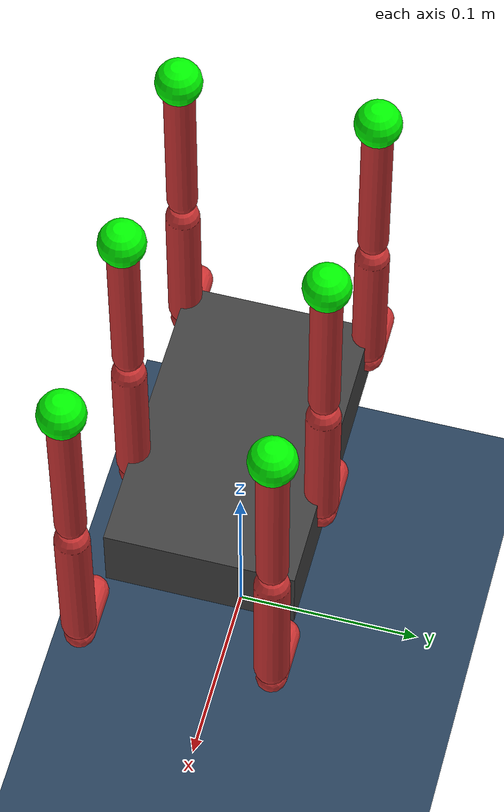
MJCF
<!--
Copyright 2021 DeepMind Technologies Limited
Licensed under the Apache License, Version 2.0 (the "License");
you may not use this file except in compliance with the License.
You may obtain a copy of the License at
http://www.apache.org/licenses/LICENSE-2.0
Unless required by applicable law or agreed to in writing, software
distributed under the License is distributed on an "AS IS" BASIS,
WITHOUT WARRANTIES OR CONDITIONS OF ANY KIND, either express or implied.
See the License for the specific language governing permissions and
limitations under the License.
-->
<mujoco model="hexapod">
    <compiler autolimits="true"/>

    <option timestep="0.002" gravity="0 0 -9.81" iterations="50" solver="Newton"/>

    <asset>
        <texture name="grid" type="2d" builtin="checker"
                 width="512" height="512"
                 rgb1=".1 .2 .3" rgb2=".2 .3 .4"/>
        <material name="grid" texture="grid"
                  texrepeat="1 1" texuniform="true" reflectance=".2"/>
        <material name="body_mat" rgba="0.25 0.25 0.25 1"/>
        <material name="leg_mat"  rgba="0.80 0.20 0.20 1"/>
        <material name="tip_mat"  rgba="0.10 0.80 0.10 1"/>
    </asset>

    <default>
        <joint damping="0.5" armature="0.004" frictionloss="0.01"/>

        <position kv="0.5" forcerange="-2.5 2.5"/>
    </default>

    <worldbody>
        <!-- Ground plane — high lateral friction for stable foot contact -->
        <geom type="plane" size="5 5 0.01" material="grid"
              friction="1.2 0.005 0.0001"/>

        <!-- Overhead tracking light -->
        <light name="sun" pos="0 0 2" mode="trackcom" diffuse="0.85 0.85 0.85"/>

        <body name="torso" pos="0 0 0.15">
            <freejoint/>
            <geom type="box" size="0.08 0.05 0.02"
                  material="body_mat" mass="1.0"/>
            <site name="imu_site" pos="0 0 0" size="0.01" rgba="1 0 0 1"/>

            <body name="leg0_base" pos="0.10 0.05 0">
                <joint name="leg0_coxa_j" type="hinge" axis="0 0 1" range="0 90"/>
                <!-- Coxa segment: 25 mm stub along local +X (toward femur joint) -->
                <geom name="leg0_coxa_g" type="capsule" size="0.008 0.0125"
                      pos="0.0125 0 0" euler="0 90 0"
                      material="leg_mat" mass="0.03"/>

                <!-- Femur body offset 25 mm from coxa joint along coxa local-X -->
                <body name="leg0_femur" pos="0.025 0 0">
                    <joint name="leg0_femur_j" type="hinge" axis="0 1 0" range="30 75"/>
                    <geom name="leg0_femur_g" type="capsule" size="0.009 0.04"
                          pos="0 0 0.05" material="leg_mat" mass="0.04"/>

                    <body name="leg0_tibia" pos="0 0 0.1">
                        <joint name="leg0_tibia_j" type="hinge" axis="0 1 0" range="15 105"/>
                        <geom name="leg0_tibia_g" type="capsule" size="0.008 0.045"
                              pos="0 0 0.05" material="leg_mat" mass="0.04"
                              friction="1.5 0.05 0.01"/>
                        <site name="tip_leg0" pos="0 0 0.1" size="0.012" rgba="0 1 0 1"/>
                    </body>
                </body>
            </body>

            <body name="leg1_base" pos="0.10 -0.05 0">
                <joint name="leg1_coxa_j" type="hinge" axis="0 0 1" range="-90 0"/>
                <geom name="leg1_coxa_g" type="capsule" size="0.008 0.0125"
                      pos="0.0125 0 0" euler="0 90 0"
                      material="leg_mat" mass="0.03"/>

                <body name="leg1_femur" pos="0.025 0 0">
                    <joint name="leg1_femur_j" type="hinge" axis="0 1 0" range="30 75"/>
                    <geom name="leg1_femur_g" type="capsule" size="0.009 0.04"
                          pos="0 0 0.05" material="leg_mat" mass="0.04"/>

                    <body name="leg1_tibia" pos="0 0 0.1">
                        <joint name="leg1_tibia_j" type="hinge" axis="0 1 0" range="15 105"/>
                        <geom name="leg1_tibia_g" type="capsule" size="0.008 0.045"
                              pos="0 0 0.05" material="leg_mat" mass="0.04"
                              friction="1.5 0.05 0.01"/>
                        <site name="tip_leg1" pos="0 0 0.1" size="0.012" rgba="0 1 0 1"/>
                    </body>
                </body>
            </body>

            <body name="leg2_base" pos="0 0.05 0">
                <joint name="leg2_coxa_j" type="hinge" axis="0 0 1" range="45 135"/>
                <geom name="leg2_coxa_g" type="capsule" size="0.008 0.0125"
                      pos="0.0125 0 0" euler="0 90 0"
                      material="leg_mat" mass="0.03"/>

                <body name="leg2_femur" pos="0.025 0 0">
                    <joint name="leg2_femur_j" type="hinge" axis="0 1 0" range="30 75"/>
                    <geom name="leg2_femur_g" type="capsule" size="0.009 0.04"
                          pos="0 0 0.05" material="leg_mat" mass="0.04"/>

                    <body name="leg2_tibia" pos="0 0 0.1">
                        <joint name="leg2_tibia_j" type="hinge" axis="0 1 0" range="15 105"/>
                        <geom name="leg2_tibia_g" type="capsule" size="0.008 0.045"
                              pos="0 0 0.05" material="leg_mat" mass="0.04"
                              friction="1.5 0.05 0.01"/>
                        <site name="tip_leg2" pos="0 0 0.1" size="0.012" rgba="0 1 0 1"/>
                    </body>
                </body>
            </body>

            <body name="leg3_base" pos="0 -0.05 0">
                <joint name="leg3_coxa_j" type="hinge" axis="0 0 1" range="-135 -45"/>
                <geom name="leg3_coxa_g" type="capsule" size="0.008 0.0125"
                      pos="0.0125 0 0" euler="0 90 0"
                      material="leg_mat" mass="0.03"/>

                <body name="leg3_femur" pos="0.025 0 0">
                    <joint name="leg3_femur_j" type="hinge" axis="0 1 0" range="30 75"/>
                    <geom name="leg3_femur_g" type="capsule" size="0.009 0.04"
                          pos="0 0 0.05" material="leg_mat" mass="0.04"/>

                    <body name="leg3_tibia" pos="0 0 0.1">
                        <joint name="leg3_tibia_j" type="hinge" axis="0 1 0" range="15 105"/>
                        <geom name="leg3_tibia_g" type="capsule" size="0.008 0.045"
                              pos="0 0 0.05" material="leg_mat" mass="0.04"
                              friction="1.5 0.05 0.01"/>
                        <site name="tip_leg3" pos="0 0 0.1" size="0.012" rgba="0 1 0 1"/>
                    </body>
                </body>
            </body>

            <body name="leg4_base" pos="-0.10 0.05 0">
                <joint name="leg4_coxa_j" type="hinge" axis="0 0 1" range="90 180"/>
                <geom name="leg4_coxa_g" type="capsule" size="0.008 0.0125"
                      pos="0.0125 0 0" euler="0 90 0"
                      material="leg_mat" mass="0.03"/>

                <body name="leg4_femur" pos="0.025 0 0">
                    <joint name="leg4_femur_j" type="hinge" axis="0 1 0" range="30 75"/>
                    <geom name="leg4_femur_g" type="capsule" size="0.009 0.04"
                          pos="0 0 0.05" material="leg_mat" mass="0.04"/>

                    <body name="leg4_tibia" pos="0 0 0.1">
                        <joint name="leg4_tibia_j" type="hinge" axis="0 1 0" range="15 105"/>
                        <geom name="leg4_tibia_g" type="capsule" size="0.008 0.045"
                              pos="0 0 0.05" material="leg_mat" mass="0.04"
                              friction="1.5 0.05 0.01"/>
                        <site name="tip_leg4" pos="0 0 0.1" size="0.012" rgba="0 1 0 1"/>
                    </body>
                </body>
            </body>

            <body name="leg5_base" pos="-0.10 -0.05 0">
                <joint name="leg5_coxa_j" type="hinge" axis="0 0 1" range="-180 -90"/>
                <geom name="leg5_coxa_g" type="capsule" size="0.008 0.0125"
                      pos="0.0125 0 0" euler="0 90 0"
                      material="leg_mat" mass="0.03"/>

                <body name="leg5_femur" pos="0.025 0 0">
                    <joint name="leg5_femur_j" type="hinge" axis="0 1 0" range="30 75"/>
                    <geom name="leg5_femur_g" type="capsule" size="0.009 0.04"
                          pos="0 0 0.05" material="leg_mat" mass="0.04"/>

                    <body name="leg5_tibia" pos="0 0 0.1">
                        <joint name="leg5_tibia_j" type="hinge" axis="0 1 0" range="15 105"/>
                        <geom name="leg5_tibia_g" type="capsule" size="0.008 0.045"
                              pos="0 0 0.05" material="leg_mat" mass="0.04"
                              friction="1.5 0.05 0.01"/>
                        <site name="tip_leg5" pos="0 0 0.1" size="0.012" rgba="0 1 0 1"/>
                    </body>
                </body>
            </body>

        </body>
    </worldbody>

    <actuator>
        <!-- Coxa joints — higher kp for crisp yaw response -->
        <position name="act_leg0_coxa"  joint="leg0_coxa_j"  kp="30" ctrlrange="0.00  1.57"/>
        <position name="act_leg1_coxa"  joint="leg1_coxa_j"  kp="30" ctrlrange="-1.57 0.00"/>
        <position name="act_leg2_coxa"  joint="leg2_coxa_j"  kp="30" ctrlrange="0.79  2.36"/>
        <position name="act_leg3_coxa"  joint="leg3_coxa_j"  kp="30" ctrlrange="-2.36 -0.79"/>
        <position name="act_leg4_coxa"  joint="leg4_coxa_j"  kp="30" ctrlrange="1.57  3.14"/>
        <position name="act_leg5_coxa"  joint="leg5_coxa_j"  kp="30" ctrlrange="-3.14 -1.57"/>

        <!-- Femur joints — moderate gain, carries body weight -->
        <position name="act_leg0_femur" joint="leg0_femur_j" kp="28" ctrlrange="0.52  1.31"/>
        <position name="act_leg1_femur" joint="leg1_femur_j" kp="28" ctrlrange="0.52  1.31"/>
        <position name="act_leg2_femur" joint="leg2_femur_j" kp="28" ctrlrange="0.52  1.31"/>
        <position name="act_leg3_femur" joint="leg3_femur_j" kp="28" ctrlrange="0.52  1.31"/>
        <position name="act_leg4_femur" joint="leg4_femur_j" kp="28" ctrlrange="0.52  1.31"/>
        <position name="act_leg5_femur" joint="leg5_femur_j" kp="28" ctrlrange="0.52  1.31"/>

        <!-- Tibia joints — lower kp, controls foot strike angle -->
        <position name="act_leg0_tibia" joint="leg0_tibia_j" kp="22" ctrlrange="0.26  1.83"/>
        <position name="act_leg1_tibia" joint="leg1_tibia_j" kp="22" ctrlrange="0.26  1.83"/>
        <position name="act_leg2_tibia" joint="leg2_tibia_j" kp="22" ctrlrange="0.26  1.83"/>
        <position name="act_leg3_tibia" joint="leg3_tibia_j" kp="22" ctrlrange="0.26  1.83"/>
        <position name="act_leg4_tibia" joint="leg4_tibia_j" kp="22" ctrlrange="0.26  1.83"/>
        <position name="act_leg5_tibia" joint="leg5_tibia_j" kp="22" ctrlrange="0.26  1.83"/>
    </actuator>

    <sensor>
        <framequat name="torso_orientation" objtype="body" objname="torso"/>
        <gyro      name="torso_gyro"        site="imu_site"/>
        <touch name="touch_leg0" site="tip_leg0"/>
        <touch name="touch_leg1" site="tip_leg1"/>
        <touch name="touch_leg2" site="tip_leg2"/>
        <touch name="touch_leg3" site="tip_leg3"/>
        <touch name="touch_leg4" site="tip_leg4"/>
        <touch name="touch_leg5" site="tip_leg5"/>
    </sensor>

</mujoco>
